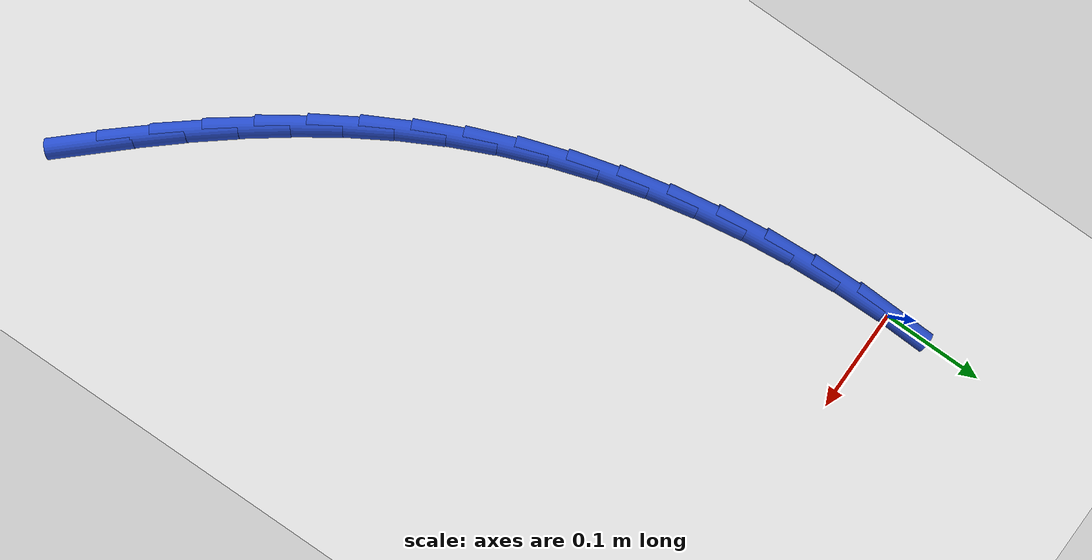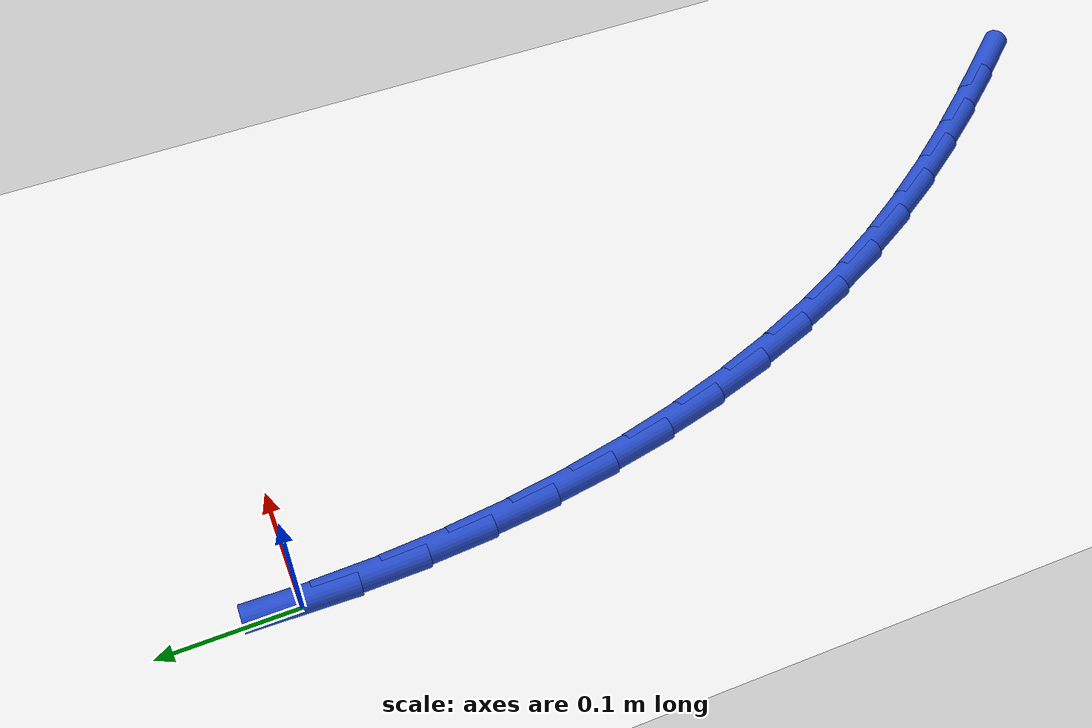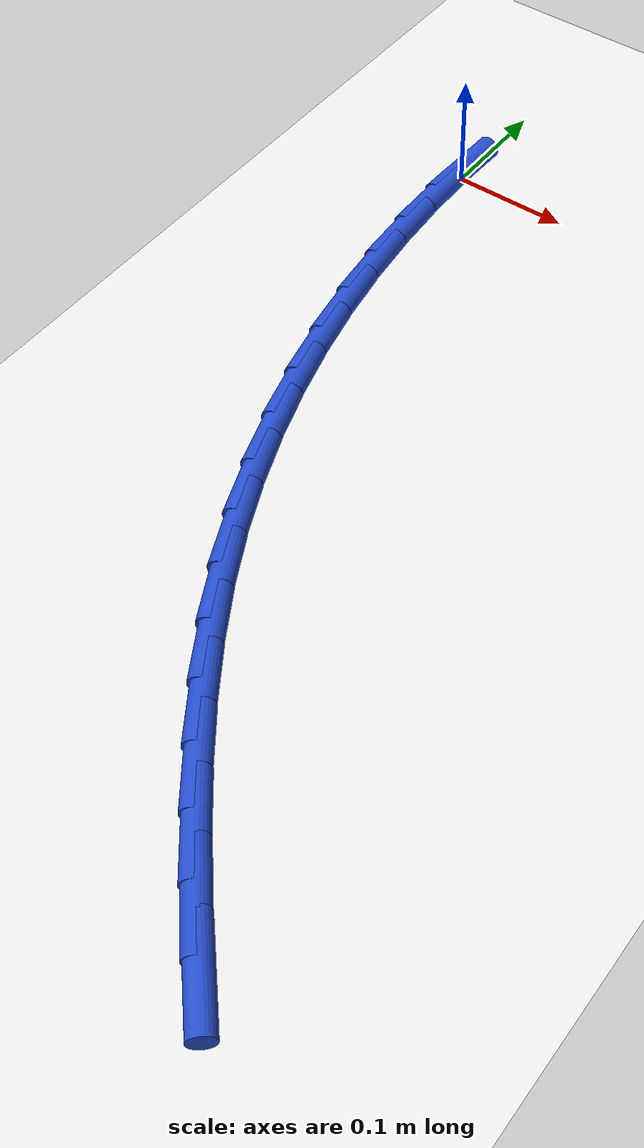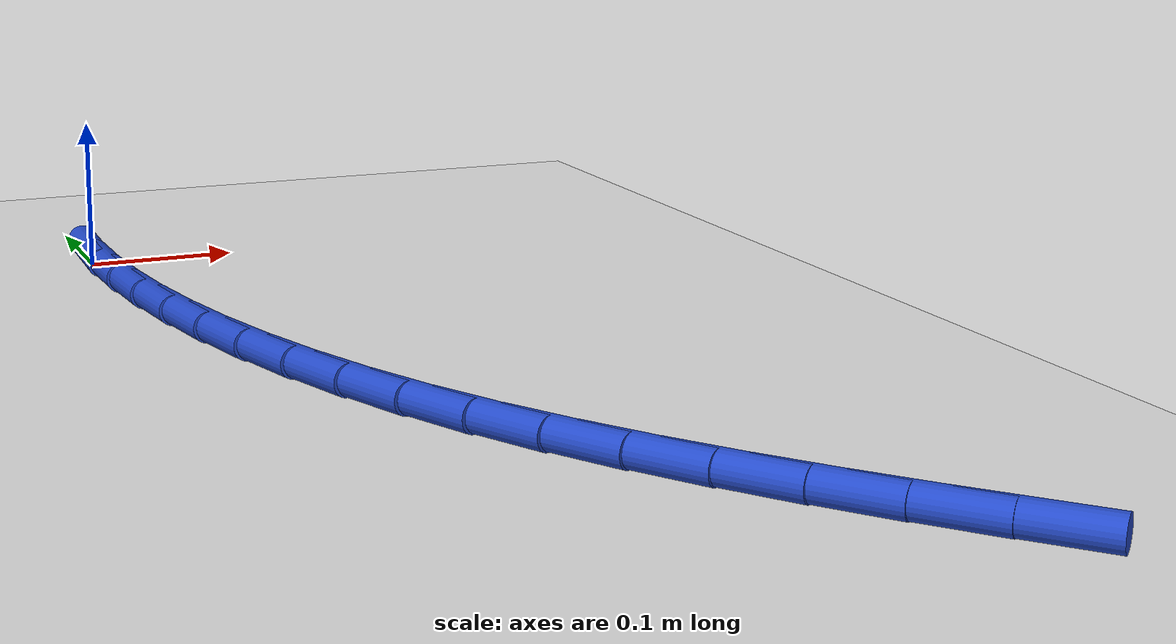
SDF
<sdf version="1.6">
 <world name="default">
  <model name="ground_plane">
   <static>1</static>
   <link name="link">
    <collision name="collision">
     <geometry><plane><normal>0 0 1</normal><size>100 100</size></plane></geometry>
     <surface><friction><ode><mu>100</mu><mu2>50</mu2></ode></friction></surface>
    </collision>
    <visual name="visual">
     <cast_shadows>0</cast_shadows>
     <geometry><plane><normal>0 0 1</normal><size>100 100</size></plane></geometry>
     <material>
      <script><uri>file://media/materials/scripts/gazebo.material</uri><name>Gazebo/WhiteGlow</name></script>
     </material>
    </visual>
   </link>
  </model>
  <model name="line">
   <link name="link_124">
    <pose>0.2858574956349566 -0.6888591550078033 0.01 0 1.57 -0.8345980137297713</pose>
    <collision name="collision">
     <geometry><cylinder><radius>0.01</radius><length>0.08</length></cylinder></geometry>
    </collision>
    <visual name="visual">
     <material>
      <script><name>Gazebo/Blue</name><uri>file://media/materials/scripts/gazebo.material</uri></script>
     </material>
     <geometry><cylinder><radius>0.01</radius><length>0.08</length></cylinder></geometry>
    </visual>
   </link>
   <link name="link_125">
    <pose>0.2534979162178468 -0.6531477904254449 0.01 0 1.57 -0.8628259554911207</pose>
    <collision name="collision">
     <geometry><cylinder><radius>0.01</radius><length>0.08</length></cylinder></geometry>
    </collision>
    <visual name="visual">
     <material>
      <script><name>Gazebo/Blue</name><uri>file://media/materials/scripts/gazebo.material</uri></script>
     </material>
     <geometry><cylinder><radius>0.01</radius><length>0.08</length></cylinder></geometry>
    </visual>
   </link>
   <link name="link_126">
    <pose>0.22233607019270968 -0.6167440074922887 0.01 0 1.57 -0.8965686944428253</pose>
    <collision name="collision">
     <geometry><cylinder><radius>0.01</radius><length>0.08</length></cylinder></geometry>
    </collision>
    <visual name="visual">
     <material>
      <script><name>Gazebo/Blue</name><uri>file://media/materials/scripts/gazebo.material</uri></script>
     </material>
     <geometry><cylinder><radius>0.01</radius><length>0.08</length></cylinder></geometry>
    </visual>
   </link>
   <link name="link_127">
    <pose>0.1925844230859715 -0.5795152894556855 0.01 0 1.57 -0.9359086979362614</pose>
    <collision name="collision">
     <geometry><cylinder><radius>0.01</radius><length>0.08</length></cylinder></geometry>
    </collision>
    <visual name="visual">
     <material>
      <script><name>Gazebo/Blue</name><uri>file://media/materials/scripts/gazebo.material</uri></script>
     </material>
     <geometry><cylinder><radius>0.01</radius><length>0.08</length></cylinder></geometry>
    </visual>
   </link>
   <link name="link_128">
    <pose>0.1644554404240572 -0.5413291195629848 0.01 0 1.57 -0.9808615078113629</pose>
    <collision name="collision">
     <geometry><cylinder><radius>0.01</radius><length>0.08</length></cylinder></geometry>
    </collision>
    <visual name="visual">
     <material>
      <script><name>Gazebo/Blue</name><uri>file://media/materials/scripts/gazebo.material</uri></script>
     </material>
     <geometry><cylinder><radius>0.01</radius><length>0.08</length></cylinder></geometry>
    </visual>
   </link>
   <link name="link_129">
    <pose>0.13816158773339213 -0.5020529810615364 0.01 0 1.57 -1.0313381451463066</pose>
    <collision name="collision">
     <geometry><cylinder><radius>0.01</radius><length>0.08</length></cylinder></geometry>
    </collision>
    <visual name="visual">
     <material>
      <script><name>Gazebo/Blue</name><uri>file://media/materials/scripts/gazebo.material</uri></script>
     </material>
     <geometry><cylinder><radius>0.01</radius><length>0.08</length></cylinder></geometry>
    </visual>
   </link>
   <link name="link_130">
    <pose>0.11391533054040147 -0.4615543571986898 0.01 0 1.57 -1.0870602691489866</pose>
    <collision name="collision">
     <geometry><cylinder><radius>0.01</radius><length>0.08</length></cylinder></geometry>
    </collision>
    <visual name="visual">
     <material>
      <script><name>Gazebo/Blue</name><uri>file://media/materials/scripts/gazebo.material</uri></script>
     </material>
     <geometry><cylinder><radius>0.01</radius><length>0.08</length></cylinder></geometry>
    </visual>
   </link>
   <link name="link_131">
    <pose>0.09192770947078588 -0.419702572746626 0.01 0 1.57 -1.1450516771559598</pose>
    <collision name="collision">
     <geometry><cylinder><radius>0.01</radius><length>0.08</length></cylinder></geometry>
    </collision>
    <visual name="visual">
     <material>
      <script><name>Gazebo/Blue</name><uri>file://media/materials/scripts/gazebo.material</uri></script>
     </material>
     <geometry><cylinder><radius>0.01</radius><length>0.08</length></cylinder></geometry>
    </visual>
   </link>
   <link name="link_132">
    <pose>0.07232533009292925 -0.37647607534623106 0.01 0 1.57 -1.201215321482451</pose>
    <collision name="collision">
     <geometry><cylinder><radius>0.01</radius><length>0.08</length></cylinder></geometry>
    </collision>
    <visual name="visual">
     <material>
      <script><name>Gazebo/Blue</name><uri>file://media/materials/scripts/gazebo.material</uri></script>
     </material>
     <geometry><cylinder><radius>0.01</radius><length>0.08</length></cylinder></geometry>
    </visual>
   </link>
   <link name="link_133">
    <pose>0.05510452894867751 -0.332021670786423 0.01 0 1.57 -1.2553794987779445</pose>
    <collision name="collision">
     <geometry><cylinder><radius>0.01</radius><length>0.08</length></cylinder></geometry>
    </collision>
    <visual name="visual">
     <material>
      <script><name>Gazebo/Blue</name><uri>file://media/materials/scripts/gazebo.material</uri></script>
     </material>
     <geometry><cylinder><radius>0.01</radius><length>0.08</length></cylinder></geometry>
    </visual>
   </link>
   <link name="link_134">
    <pose>0.04025050709184189 -0.28650055622905624 0.01 0 1.57 -1.3077500832074909</pose>
    <collision name="collision">
     <geometry><cylinder><radius>0.01</radius><length>0.08</length></cylinder></geometry>
    </collision>
    <visual name="visual">
     <material>
      <script><name>Gazebo/Blue</name><uri>file://media/materials/scripts/gazebo.material</uri></script>
     </material>
     <geometry><cylinder><radius>0.01</radius><length>0.08</length></cylinder></geometry>
    </visual>
   </link>
   <link name="link_135">
    <pose>0.02774846557623353 -0.24007392883598522 0.01 0 1.57 -1.3585519931415861</pose>
    <collision name="collision">
     <geometry><cylinder><radius>0.01</radius><length>0.08</length></cylinder></geometry>
    </collision>
    <visual name="visual">
     <material>
      <script><name>Gazebo/Blue</name><uri>file://media/materials/scripts/gazebo.material</uri></script>
     </material>
     <geometry><cylinder><radius>0.01</radius><length>0.08</length></cylinder></geometry>
    </visual>
   </link>
   <link name="link_136">
    <pose>0.01758360545566413 -0.19290298576906614 0.01 0 1.57 -1.4080228972740776</pose>
    <collision name="collision">
     <geometry><cylinder><radius>0.01</radius><length>0.08</length></cylinder></geometry>
    </collision>
    <visual name="visual">
     <material>
      <script><name>Gazebo/Blue</name><uri>file://media/materials/scripts/gazebo.material</uri></script>
     </material>
     <geometry><cylinder><radius>0.01</radius><length>0.08</length></cylinder></geometry>
    </visual>
   </link>
   <link name="link_137">
    <pose>0.009741127783944783 -0.14514892419015335 0.01 0 1.57 -1.4564087774814989</pose>
    <collision name="collision">
     <geometry><cylinder><radius>0.01</radius><length>0.08</length></cylinder></geometry>
    </collision>
    <visual name="visual">
     <material>
      <script><name>Gazebo/Blue</name><uri>file://media/materials/scripts/gazebo.material</uri></script>
     </material>
     <geometry><cylinder><radius>0.01</radius><length>0.08</length></cylinder></geometry>
    </visual>
   </link>
   <link name="link_138">
    <pose>0.004206233614886769 -0.0969729412611016 0.01 0 1.57 -1.5039610500944915</pose>
    <collision name="collision">
     <geometry><cylinder><radius>0.01</radius><length>0.08</length></cylinder></geometry>
    </collision>
    <visual name="visual">
     <material>
      <script><name>Gazebo/Blue</name><uri>file://media/materials/scripts/gazebo.material</uri></script>
     </material>
     <geometry><cylinder><radius>0.01</radius><length>0.08</length></cylinder></geometry>
    </visual>
   </link>
   <link name="link_139">
    <pose>0.0009641240023014024 -0.04853623414376579 0.01 0 1.57 -1.5509349337197573</pose>
    <collision name="collision">
     <geometry><cylinder><radius>0.01</radius><length>0.08</length></cylinder></geometry>
    </collision>
    <visual name="visual">
     <material>
      <script><name>Gazebo/Blue</name><uri>file://media/materials/scripts/gazebo.material</uri></script>
     </material>
     <geometry><cylinder><radius>0.01</radius><length>0.08</length></cylinder></geometry>
    </visual>
   </link>
   <link name="link_140">
    <pose>-1.3877787807814457e-17 -5.551115123125783e-17 0.01 0 1.57 1.5440038875842506</pose>
    <collision name="collision">
     <geometry><cylinder><radius>0.01</radius><length>0.08</length></cylinder></geometry>
    </collision>
    <visual name="visual">
     <material>
      <script><name>Gazebo/Blue</name><uri>file://media/materials/scripts/gazebo.material</uri></script>
     </material>
     <geometry><cylinder><radius>0.01</radius><length>0.08</length></cylinder></geometry>
    </visual>
   </link>
  </model>
 </world>
</sdf>
